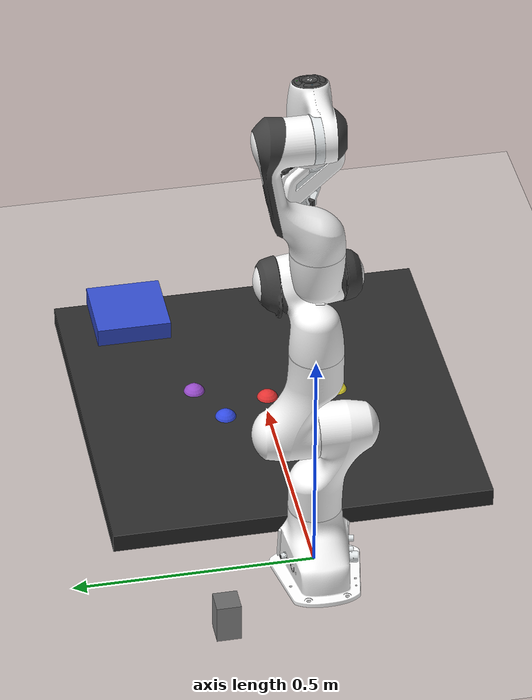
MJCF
<mujoco model="franka_pick_place">
    <compiler angle="degree" coordinate="local" inertiafromgeom="true"/>
    <option timestep="0.002" gravity="0 0 -9.81"/>

    <include file="franka_emika_panda/panda_position.xml"/>

    <size njmax="2000" nconmax="200"/>

    <default>
        <default class="object">
            <geom type="sphere" size="0.025" density="1500" rgba="1 1 1 1" contype="1" conaffinity="1" friction="1 0.3 0.1"/>
            <joint type="free" damping="1"/>
        </default>
        <default class="occluder">
            <geom type="box" size="0.03 0.03 0.05" rgba="0.2 0.2 0.2 1"/>
            <joint type="free" damping="1"/>
        </default>
    </default>

    <asset>
        <texture type="skybox" builtin="gradient" rgb1="0.4 0.4 0.5" rgb2="0.0 0.0 0.0" width="512" height="512"/>
        <texture name="table_tex" type="2d" builtin="checker" rgb1="0.15 0.15 0.15" rgb2="0.18 0.18 0.18" width="256" height="256"/>
        <material name="table_mat" texture="table_tex" specular="0.1" shininess="0.3"/>
    </asset>

    <worldbody>
        <light name="top_light" pos="0 0 2" dir="0 0 -1" diffuse="0.6 0.6 0.6" ambient="0.4 0.4 0.4"/>

        <geom name="floor" type="plane" size="2 2 0.1" rgba="0.9 0.9 0.9 1"/>

        <body name="table" pos="0.5 0 0">
            <geom name="table_geom" type="box" size="0.4 0.4 0.02" pos="0 0 0.02" material="table_mat"/>
        </body>

        <!-- Target bin -->
        <body name="goal_bin" pos="0.8 0.25 0.08">
            <geom type="box" size="0.08 0.08 0.02" rgba="0.2 0.3 0.8 1" contype="1" conaffinity="1"/>
        </body>

        <!-- Movable objects -->
        <body name="object_body_red" childclass="object" pos="0.5 0 0.03">
            <joint/>
            <geom name="object_geom_red" rgba="0.9 0.2 0.2 1"/>
            <site name="object_site_red" pos="0 0 0" size="0.01" rgba="1 0 0 0"/>
        </body>

        <body name="object_body_green" childclass="object" pos="0.55 -0.1 0.03">
            <joint/>
            <geom name="object_geom_green" rgba="0.2 0.9 0.2 1"/>
            <site name="object_site_green" pos="0 0 0" size="0.01" rgba="0 1 0 0"/>
        </body>

        <body name="object_body_blue" childclass="object" pos="0.45 0.1 0.03">
            <joint/>
            <geom name="object_geom_blue" rgba="0.2 0.3 0.9 1"/>
            <site name="object_site_blue" pos="0 0 0" size="0.01" rgba="0 0 1 0"/>
        </body>

        <body name="object_body_yellow" childclass="object" pos="0.5 -0.15 0.03">
            <joint/>
            <geom name="object_geom_yellow" rgba="0.95 0.9 0.2 1"/>
            <site name="object_site_yellow" pos="0 0 0" size="0.01" rgba="1 1 0 0"/>
        </body>

        <body name="object_body_purple" childclass="object" pos="0.55 0.15 0.03">
            <joint/>
            <geom name="object_geom_purple" rgba="0.6 0.3 0.8 1"/>
            <site name="object_site_purple" pos="0 0 0" size="0.01" rgba="0.6 0 0.6 0"/>
        </body>

        <!-- Occluder introduced in hindered mode -->
        <body name="occluder_body" childclass="occluder" pos="1 0 -1">
            <joint/>
            <geom name="occluder_geom"/>
        </body>

        <!-- Overhead camera looking straight down -->
        <camera name="top" mode="fixed" pos="0.6 0 1.0" euler="180 0 0" fovy="55"/>
    </worldbody>
</mujoco>

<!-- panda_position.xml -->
<mujoco model="panda">
  <compiler angle="radian" meshdir="franka_emika_panda/assets" autolimits="true"/>

  <default>
    <default class="panda">
      <material specular="0.5" shininess="0.25"/>
      <joint armature="0.1" damping="1" axis="0 0 1" range="-2.8973 2.8973"/>
      <general dyntype="none" biastype="affine" ctrlrange="-2.8973 2.8973" forcerange="-87 87"/>
      <position forcerange="-100 100"/>
      <default class="finger">
        <joint axis="0 1 0" type="slide" range="0 0.04"/>
      </default>

      <default class="visual">
        <geom type="mesh" contype="0" conaffinity="0" group="2"/>
      </default>
      <default class="collision">
        <geom group="3" type="mesh" contype="0" conaffinity="0"/>
        <default class="primitive_collision">
          <geom group="3" type="box" contype="0" conaffinity="0"
           condim="3" solimp="0.99 0.995 0.01" solref="0.01 1" friction="1 0.005 0.0001"/>
          <default class="fingertip_pad_collision_1">
            <geom type="box" size="0.011 0.0075 0.01" pos="0 0.0185 0.011"/>
          </default>
          <default class="fingertip_pad_collision_2">
            <geom type="box" size="0.011 0.0044 0.0019" pos="0 0.0068 0.0022"/>
          </default>
          <default class="fingertip_pad_collision_3">
            <geom type="box" size="0.00875 0.0035 0.01175" pos="0 0.0159 0.02835" quat="1 0.25 0 0"/>
          </default>
          <default class="fingertip_pad_collision_4">
            <geom type="box" size="0.00875 0.0076 0.00825" pos="0 0.00758 0.04525" conaffinity="3"/>
          </default>
        </default>
      </default>
    </default>
  </default>

  <asset>
    <material class="panda" name="white" rgba="1 1 1 1"/>
    <material class="panda" name="off_white" rgba="0.901961 0.921569 0.929412 1"/>
    <material class="panda" name="black" rgba="0.25 0.25 0.25 1"/>
    <material class="panda" name="green" rgba="0 1 0 1"/>
    <material class="panda" name="light_blue" rgba="0.039216 0.541176 0.780392 1"/>

    <!-- Collision meshes -->
    <mesh name="link0_c" file="link0.stl"/>
    <mesh name="link1_c" file="link1.stl"/>
    <mesh name="link2_c" file="link2.stl"/>
    <mesh name="link3_c" file="link3.stl"/>
    <mesh name="link4_c" file="link4.stl"/>
    <mesh name="link5_c0" file="link5_collision_0.obj"/>
    <mesh name="link5_c1" file="link5_collision_1.obj"/>
    <mesh name="link5_c2" file="link5_collision_2.obj"/>
    <mesh name="link6_c" file="link6.stl"/>
    <mesh name="link7_c" file="link7.stl"/>
    <mesh name="hand_c" file="hand.stl"/>

    <!-- Visual meshes -->
    <mesh file="link0_0.obj"/>
    <mesh file="link0_1.obj"/>
    <mesh file="link0_2.obj"/>
    <mesh file="link0_3.obj"/>
    <mesh file="link0_4.obj"/>
    <mesh file="link0_5.obj"/>
    <mesh file="link0_7.obj"/>
    <mesh file="link0_8.obj"/>
    <mesh file="link0_9.obj"/>
    <mesh file="link0_10.obj"/>
    <mesh file="link0_11.obj"/>
    <mesh file="link1.obj"/>
    <mesh file="link2.obj"/>
    <mesh file="link3_0.obj"/>
    <mesh file="link3_1.obj"/>
    <mesh file="link3_2.obj"/>
    <mesh file="link3_3.obj"/>
    <mesh file="link4_0.obj"/>
    <mesh file="link4_1.obj"/>
    <mesh file="link4_2.obj"/>
    <mesh file="link4_3.obj"/>
    <mesh file="link5_0.obj"/>
    <mesh file="link5_1.obj"/>
    <mesh file="link5_2.obj"/>
    <mesh file="link6_0.obj"/>
    <mesh file="link6_1.obj"/>
    <mesh file="link6_2.obj"/>
    <mesh file="link6_3.obj"/>
    <mesh file="link6_4.obj"/>
    <mesh file="link6_5.obj"/>
    <mesh file="link6_6.obj"/>
    <mesh file="link6_7.obj"/>
    <mesh file="link6_8.obj"/>
    <mesh file="link6_9.obj"/>
    <mesh file="link6_10.obj"/>
    <mesh file="link6_11.obj"/>
    <mesh file="link6_12.obj"/>
    <mesh file="link6_13.obj"/>
    <mesh file="link6_14.obj"/>
    <mesh file="link6_15.obj"/>
    <mesh file="link6_16.obj"/>
    <mesh file="link7_0.obj"/>
    <mesh file="link7_1.obj"/>
    <mesh file="link7_2.obj"/>
    <mesh file="link7_3.obj"/>
    <mesh file="link7_4.obj"/>
    <mesh file="link7_5.obj"/>
    <mesh file="link7_6.obj"/>
    <mesh file="link7_7.obj"/>
    <mesh file="hand_0.obj"/>
    <mesh file="hand_1.obj"/>
    <mesh file="hand_2.obj"/>
    <mesh file="hand_3.obj"/>
    <mesh file="hand_4.obj"/>
    <mesh file="finger_0.obj"/>
    <mesh file="finger_1.obj"/>
  </asset>

  <worldbody>
    <light name="top" pos="0 0 2" mode="trackcom"/>
    <body name="link0" childclass="panda">
      <inertial mass="0.629769" pos="-0.041018 -0.00014 0.049974"
        fullinertia="0.00315 0.00388 0.004285 8.2904e-7 0.00015 8.2299e-6"/>
      <geom mesh="link0_0" material="off_white" class="visual"/>
      <geom mesh="link0_1" material="black" class="visual"/>
      <geom mesh="link0_2" material="off_white" class="visual"/>
      <geom mesh="link0_3" material="black" class="visual"/>
      <geom mesh="link0_4" material="off_white" class="visual"/>
      <geom mesh="link0_5" material="black" class="visual"/>
      <geom mesh="link0_7" material="white" class="visual"/>
      <geom mesh="link0_8" material="white" class="visual"/>
      <geom mesh="link0_9" material="black" class="visual"/>
      <geom mesh="link0_10" material="off_white" class="visual"/>
      <geom mesh="link0_11" material="white" class="visual"/>
      <geom mesh="link0_c" class="collision"/>
      <body name="link1" pos="0 0 0.333">
        <inertial mass="4.970684" pos="0.003875 0.002081 -0.04762"
          fullinertia="0.70337 0.70661 0.0091170 -0.00013900 0.0067720 0.019169"/>
        <joint name="joint1" damping="40"/>
        <geom material="white" mesh="link1" class="visual"/>
        <geom mesh="link1_c" class="collision"/>
        <body name="link2" quat="1 -1 0 0">
          <inertial mass="0.646926" pos="-0.003141 -0.02872 0.003495"
            fullinertia="0.0079620 2.8110e-2 2.5995e-2 -3.925e-3 1.0254e-2 7.04e-4"/>
          <joint name="joint2" range="-1.7628 1.7628" damping="40"/>
          <geom material="white" mesh="link2" class="visual"/>
          <geom mesh="link2_c" class="collision"/>
          <body name="link3" pos="0 -0.316 0" quat="1 1 0 0">
            <joint name="joint3" damping="40"/>
            <inertial mass="3.228604" pos="2.7518e-2 3.9252e-2 -6.6502e-2"
              fullinertia="3.7242e-2 3.6155e-2 1.083e-2 -4.761e-3 -1.1396e-2 -1.2805e-2"/>
            <geom mesh="link3_0" material="white" class="visual"/>
            <geom mesh="link3_1" material="white" class="visual"/>
            <geom mesh="link3_2" material="white" class="visual"/>
            <geom mesh="link3_3" material="black" class="visual"/>
            <geom mesh="link3_c" class="collision"/>
            <body name="link4" pos="0.0825 0 0" quat="1 1 0 0">
              <inertial mass="3.587895" pos="-5.317e-2 1.04419e-1 2.7454e-2"
                fullinertia="2.5853e-2 1.9552e-2 2.8323e-2 7.796e-3 -1.332e-3 8.641e-3"/>
              <joint name="joint4" range="-3.0718 -0.0698" damping="40"/>
              <geom mesh="link4_0" material="white" class="visual"/>
              <geom mesh="link4_1" material="white" class="visual"/>
              <geom mesh="link4_2" material="black" class="visual"/>
              <geom mesh="link4_3" material="white" class="visual"/>
              <geom mesh="link4_c" class="collision"/>
              <body name="link5" pos="-0.0825 0.384 0" quat="1 -1 0 0">
                <inertial mass="1.225946" pos="-1.1953e-2 4.1065e-2 -3.8437e-2"
                  fullinertia="3.5549e-2 2.9474e-2 8.627e-3 -2.117e-3 -4.037e-3 2.29e-4"/>
                <joint name="joint5" damping="2"/>
                <geom mesh="link5_0" material="black" class="visual"/>
                <geom mesh="link5_1" material="white" class="visual"/>
                <geom mesh="link5_2" material="white" class="visual"/>
                <geom mesh="link5_c0" class="collision"/>
                <geom mesh="link5_c1" class="collision"/>
                <geom mesh="link5_c2" class="collision"/>
                <body name="link6" quat="1 1 0 0">
                  <inertial mass="1.666555" pos="6.0149e-2 -1.4117e-2 -1.0517e-2"
                    fullinertia="1.964e-3 4.354e-3 5.433e-3 1.09e-4 -1.158e-3 3.41e-4"/>
                  <joint name="joint6" range="-0.0175 3.7525" damping="2"/>
                  <geom mesh="link6_0" material="off_white" class="visual"/>
                  <geom mesh="link6_1" material="white" class="visual"/>
                  <geom mesh="link6_2" material="black" class="visual"/>
                  <geom mesh="link6_3" material="white" class="visual"/>
                  <geom mesh="link6_4" material="white" class="visual"/>
                  <geom mesh="link6_5" material="white" class="visual"/>
                  <geom mesh="link6_6" material="white" class="visual"/>
                  <geom mesh="link6_7" material="light_blue" class="visual"/>
                  <geom mesh="link6_8" material="light_blue" class="visual"/>
                  <geom mesh="link6_9" material="black" class="visual"/>
                  <geom mesh="link6_10" material="black" class="visual"/>
                  <geom mesh="link6_11" material="white" class="visual"/>
                  <geom mesh="link6_12" material="green" class="visual"/>
                  <geom mesh="link6_13" material="white" class="visual"/>
                  <geom mesh="link6_14" material="black" class="visual"/>
                  <geom mesh="link6_15" material="black" class="visual"/>
                  <geom mesh="link6_16" material="white" class="visual"/>
                  <geom mesh="link6_c" class="collision"/>
                  <body name="link7" pos="0.088 0 0" quat="1 1 0 0">
                    <inertial mass="7.35522e-01" pos="1.0517e-2 -4.252e-3 6.1597e-2"
                      fullinertia="1.2516e-2 1.0027e-2 4.815e-3 -4.28e-4 -1.196e-3 -7.41e-4"/>
                    <joint name="joint7" damping="2"/>
                    <geom mesh="link7_0" material="white" class="visual"/>
                    <geom mesh="link7_1" material="black" class="visual"/>
                    <geom mesh="link7_2" material="black" class="visual"/>
                    <geom mesh="link7_3" material="black" class="visual"/>
                    <geom mesh="link7_4" material="black" class="visual"/>
                    <geom mesh="link7_5" material="black" class="visual"/>
                    <geom mesh="link7_6" material="black" class="visual"/>
                    <geom mesh="link7_7" material="white" class="visual"/>
                    <geom mesh="link7_c" class="collision"/>
                    <body name="hand" pos="0 0 0.107" quat="0.9238795 0 0 -0.3826834">
                      <inertial mass="0.73" pos="-0.01 0 0.03" diaginertia="0.001 0.0025 0.0017"/>
                      <geom mesh="hand_0" material="off_white" class="visual"/>
                      <geom mesh="hand_1" material="black" class="visual"/>
                      <geom mesh="hand_2" material="black" class="visual"/>
                      <geom mesh="hand_3" material="white" class="visual"/>
                      <geom mesh="hand_4" material="off_white" class="visual"/>
                      <geom mesh="hand_c" class="collision"/>
                      <geom name="hand_capsule" type="capsule"
                       class="collision" conaffinity="1" size="0.04 0.06"
                       quat="1 1 0 0" pos="0 0 0.03"/>
                      <site name="panda_gripper_site" pos="0 0 0.1"/>
                      <body name="left_finger" pos="0 0 0.0584">
                        <inertial mass="0.015" pos="0 0 0" diaginertia="2.375e-6 2.375e-6 7.5e-7"/>
                        <joint name="finger_joint1" class="finger" damping="10"/>
                        <geom mesh="finger_0" material="off_white" class="visual"/>
                        <geom mesh="finger_1" material="black" class="visual"/>
                        <geom mesh="finger_0" class="collision"/>
                        <geom class="fingertip_pad_collision_1"/>
                        <geom class="fingertip_pad_collision_2"/>
                        <geom class="fingertip_pad_collision_3"/>
                        <geom name="left_finger_pad" class="fingertip_pad_collision_4"/>
                      </body>
                      <body name="right_finger" pos="0 0 0.0584" quat="0 0 0 1">
                        <inertial mass="0.015" pos="0 0 0" diaginertia="2.375e-6 2.375e-6 7.5e-7"/>
                        <joint name="finger_joint2" class="finger" damping="10"/>
                        <geom mesh="finger_0" material="off_white" class="visual"/>
                        <geom mesh="finger_1" material="black" class="visual"/>
                        <geom mesh="finger_0" class="collision"/>
                        <geom class="fingertip_pad_collision_1"/>
                        <geom class="fingertip_pad_collision_2"/>
                        <geom class="fingertip_pad_collision_3"/>
                        <geom name="right_finger_pad" class="fingertip_pad_collision_4"/>
                      </body>
                    </body>
                  </body>
                </body>
              </body>
            </body>
          </body>
        </body>
      </body>
    </body>
  </worldbody>

  <equality>
    <joint joint1="finger_joint1" joint2="finger_joint2" solimp="0.95 0.99 0.001" solref="0.005 1"/>
  </equality>

  <actuator>
    <position class="panda" name="actuator1" joint="joint1" kp="1000" kv="20"
     ctrlrange="-2.8973 2.8973"/>
    <position class="panda" name="actuator2" joint="joint2" kp="1000" kv="20"
     ctrlrange="-1.7628 1.7628"/>
    <position class="panda" name="actuator3" joint="joint3" kp="750" kv="4"
     ctrlrange="-2.8973 2.8973"/>
    <position class="panda" name="actuator4" joint="joint4" kp="750" kv="4"
     ctrlrange="-3.0718 -0.0698"/>
    <position class="panda" name="actuator5" joint="joint5" kp="300" kv="2"
     forcerange="-12 12" ctrlrange="-2.8973 2.8973"/>
    <position class="panda" name="actuator6" joint="joint6" kp="300" kv="2" forcerange="-12 12"
      ctrlrange="-0.0175 3.7525"/>
    <position class="panda" name="actuator7" joint="joint7" kp="300" kv="2" forcerange="-12 12"/>
    <general class="panda" name="actuator8" joint="finger_joint1"
     ctrlrange="0 0.04" gainprm="350 0 0" biasprm="0 -350 -10" forcerange="-200 200"/>
  </actuator>

  <contact>
    <exclude body1="link0" body2="link1"/>
  </contact>
</mujoco>
